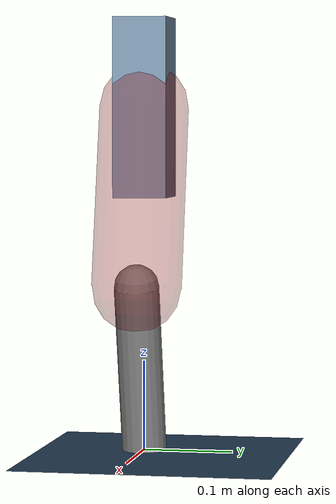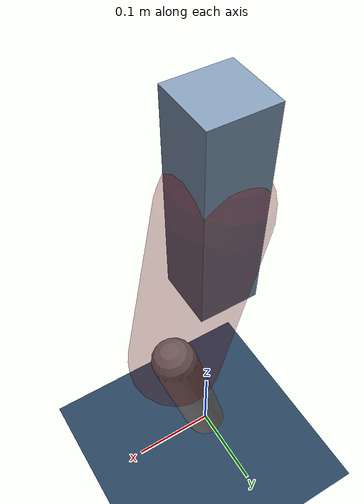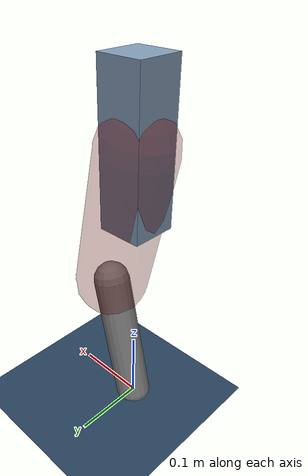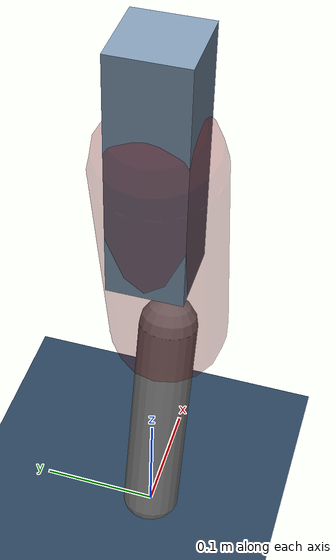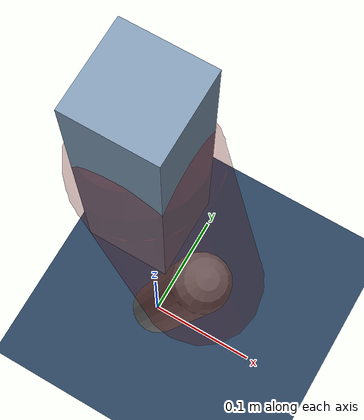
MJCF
<mujoco model="Hopper2D">
	<compiler inertiafromgeom="true" angle="radian" />
	<option timestep="0.001" integrator="implicit" cone="elliptic" solver="Newton" tolerance="1e-10" />

	<default>
		<geom contype="1" conaffinity="1" condim="3" friction="2 0.005 0.0001" solref="0.005 1" />
		<joint limited="true" damping="0.1" />
	</default>

	<asset>
		<texture name="skybox" type="skybox" builtin="gradient" rgb1=".4 .6 .8" rgb2="0 0 0" width="800" height="800" />
		<texture name="grid" type="2d" builtin="checker" rgb1=".1 .2 .3" rgb2=".2 .3 .4" width="300" height="300" mark="edge" markrgb=".2 .3 .4" />
		<material name="ground" texture="grid" texrepeat="1 1" texuniform="true" reflectance="0.1" />
		<material name="leg" rgba="0.5 0.6 0.7 1" />
	</asset>

	<worldbody>

		<geom name="floor" type="plane" size="5 5 0.25" material="ground" />

		<light directional="false" diffuse="0.8 0.8 0.8" specular="0.3 0.3 0.3" pos="0 0 2" dir="0 0 -1" />
		<light mode="targetbodycom" target="base" directional="false" diffuse="0.8 0.8 0.8" specular="0.3 0.3 0.3" pos="0 0 2" dir="0 0 -1" />

		<camera name="fixed" pos="0 -2 1" xyaxes="1 0 0 0 0 1" />
		<camera name="tracking" mode="trackcom" pos="0 -3 1" />

		<body name="root" pos="0 0 0.38433957856250756">
			<joint name="slide_x" type="slide" axis="1 0 0" range="-100 100" />
			<joint name="slide_z" type="slide" axis="0 0 1" range="0 10" />

			<body name="base" pos="0 0 0">
				<geom name="torso" type="box" size="0.03 0.03 0.1" mass="2.492" material="leg" />

				<body name="link1" pos="0 0 0" euler="0 1.3512016825861233 0">
					<joint type="hinge" axis="0 -1 0" pos="0 0 0" name="hinge1" limited="true" range="-3.14 3.14" stiffness="0" damping="0.1" />
					<geom name="thigh" type="capsule" fromto="0 0 0 0.20246893247919656 0 0" size="0.05" rgba="0.5 0 0 0.3" mass="0.7357723311979913" />

					<body name="link2" pos="0.20246893247919656 0 0" euler="0 0.4515350847817812 0">
						<joint type="hinge" axis="0 -1 0" pos="0 0 0" name="hinge2" limited="true" range="-3.14 3.14" stiffness="0" damping="0.1" />
						<geom name="shank" type="capsule" fromto="0 0 0 0.19187064608331103 0 0" size="0.025" mass="0.3939965168666488" />

					</body>
				</body>
			</body>
		</body>
	</worldbody>

	<actuator>
		<motor name="torque1" joint="hinge1" ctrlrange="-58.44864427433246 58.44864427433246" ctrllimited="true" gear="1" />
		<motor name="torque2" joint="hinge2" ctrlrange="-55.639313761000295 55.639313761000295" ctrllimited="true" gear="1" />
	</actuator>
</mujoco>
